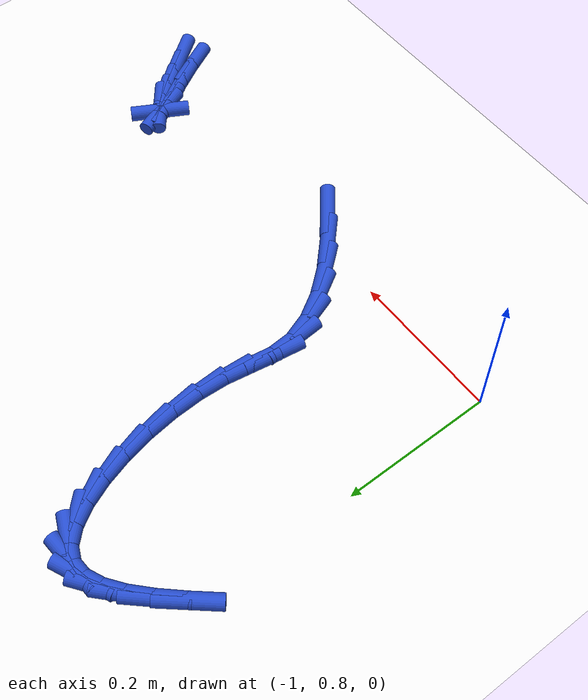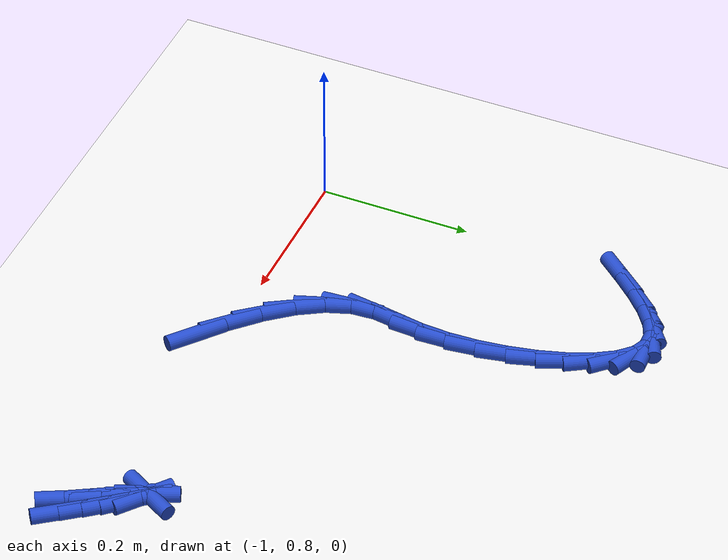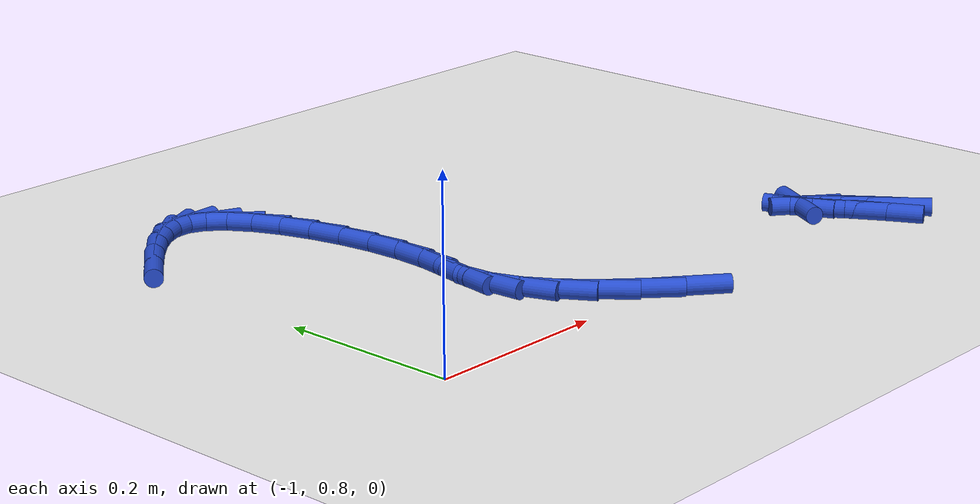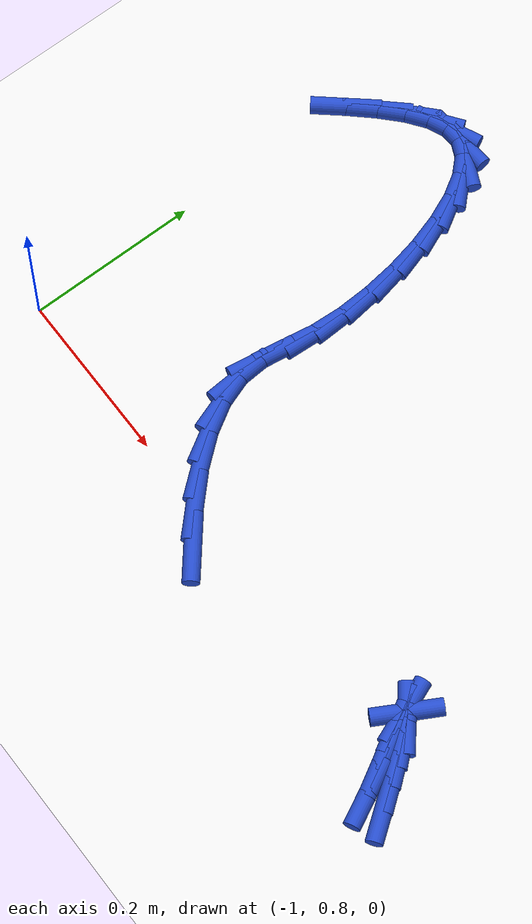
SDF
<sdf version="1.6">
 <world name="default">
  <model name="ground_plane">
   <static>1</static>
   <link name="link">
    <collision name="collision">
     <geometry><plane><normal>0 0 1</normal><size>100 100</size></plane></geometry>
     <surface><friction><ode><mu>100</mu><mu2>50</mu2></ode></friction></surface>
    </collision>
    <visual name="visual">
     <cast_shadows>0</cast_shadows>
     <geometry><plane><normal>0 0 1</normal><size>100 100</size></plane></geometry>
     <material>
      <script><uri>file://media/materials/scripts/gazebo.material</uri><name>Gazebo/WhiteGlow</name></script>
     </material>
    </visual>
   </link>
  </model>
  <model name="line">
   <link name="link_20">
    <pose>-0.326610971854327 0.7570160703169653 0.01 0 1.57 -0.9341128309318267</pose>
    <collision name="collision">
     <geometry><cylinder><radius>0.01</radius><length>0.08</length></cylinder></geometry>
    </collision>
    <visual name="visual">
     <material>
      <script><name>Gazebo/Blue</name><uri>file://media/materials/scripts/gazebo.material</uri></script>
     </material>
     <geometry><cylinder><radius>0.01</radius><length>0.08</length></cylinder></geometry>
    </visual>
   </link>
   <link name="link_21">
    <pose>-0.3464875593101196 0.7838980650699371 0.01 0 1.57 -0.914065761521262</pose>
    <collision name="collision">
     <geometry><cylinder><radius>0.01</radius><length>0.08</length></cylinder></geometry>
    </collision>
    <visual name="visual">
     <material>
      <script><name>Gazebo/Blue</name><uri>file://media/materials/scripts/gazebo.material</uri></script>
     </material>
     <geometry><cylinder><radius>0.01</radius><length>0.08</length></cylinder></geometry>
    </visual>
   </link>
   <link name="link_22">
    <pose>-0.3635627509175131 0.8060483409197607 0.01 0 1.57 -0.8849804289008176</pose>
    <collision name="collision">
     <geometry><cylinder><radius>0.01</radius><length>0.08</length></cylinder></geometry>
    </collision>
    <visual name="visual">
     <material>
      <script><name>Gazebo/Blue</name><uri>file://media/materials/scripts/gazebo.material</uri></script>
     </material>
     <geometry><cylinder><radius>0.01</radius><length>0.08</length></cylinder></geometry>
    </visual>
   </link>
   <link name="link_23">
    <pose>-0.37737124138061656 0.8229224103118391 0.01 0 1.57 -0.8315980081431773</pose>
    <collision name="collision">
     <geometry><cylinder><radius>0.01</radius><length>0.08</length></cylinder></geometry>
    </collision>
    <visual name="visual">
     <material>
      <script><name>Gazebo/Blue</name><uri>file://media/materials/scripts/gazebo.material</uri></script>
     </material>
     <geometry><cylinder><radius>0.01</radius><length>0.08</length></cylinder></geometry>
    </visual>
   </link>
   <link name="link_24">
    <pose>-0.38744772540353967 0.8339757856915754 0.01 0 1.57 -0.6731683115903806</pose>
    <collision name="collision">
     <geometry><cylinder><radius>0.01</radius><length>0.08</length></cylinder></geometry>
    </collision>
    <visual name="visual">
     <material>
      <script><name>Gazebo/Blue</name><uri>file://media/materials/scripts/gazebo.material</uri></script>
     </material>
     <geometry><cylinder><radius>0.01</radius><length>0.08</length></cylinder></geometry>
    </visual>
   </link>
   <link name="link_25">
    <pose>-0.39332689769039164 0.838663979504373 0.01 0 1.57 1.0697714906747218</pose>
    <collision name="collision">
     <geometry><cylinder><radius>0.01</radius><length>0.08</length></cylinder></geometry>
    </collision>
    <visual name="visual">
     <material>
      <script><name>Gazebo/Blue</name><uri>file://media/materials/scripts/gazebo.material</uri></script>
     </material>
     <geometry><cylinder><radius>0.01</radius><length>0.08</length></cylinder></geometry>
    </visual>
   </link>
   <link name="link_26">
    <pose>-0.39454345294528204 0.8364425041956347 0.01 0 1.57 -1.186632170181604</pose>
    <collision name="collision">
     <geometry><cylinder><radius>0.01</radius><length>0.08</length></cylinder></geometry>
    </collision>
    <visual name="visual">
     <material>
      <script><name>Gazebo/Blue</name><uri>file://media/materials/scripts/gazebo.material</uri></script>
     </material>
     <geometry><cylinder><radius>0.01</radius><length>0.08</length></cylinder></geometry>
    </visual>
   </link>
   <link name="link_27">
    <pose>-0.39063208587232 0.8267668722107641 0.01 0 1.57 -1.0773956384388206</pose>
    <collision name="collision">
     <geometry><cylinder><radius>0.01</radius><length>0.08</length></cylinder></geometry>
    </collision>
    <visual name="visual">
     <material>
      <script><name>Gazebo/Blue</name><uri>file://media/materials/scripts/gazebo.material</uri></script>
     </material>
     <geometry><cylinder><radius>0.01</radius><length>0.08</length></cylinder></geometry>
    </visual>
   </link>
   <link name="link_28">
    <pose>-0.38112749117561506 0.809092595995164 0.01 0 1.57 -1.042465320660573</pose>
    <collision name="collision">
     <geometry><cylinder><radius>0.01</radius><length>0.08</length></cylinder></geometry>
    </collision>
    <visual name="visual">
     <material>
      <script><name>Gazebo/Blue</name><uri>file://media/materials/scripts/gazebo.material</uri></script>
     </material>
     <geometry><cylinder><radius>0.01</radius><length>0.08</length></cylinder></geometry>
    </visual>
   </link>
   <link name="link_29">
    <pose>-0.3661862423763073 0.7834941184664659 0.01 0 1.57 -1.053773762595295</pose>
    <collision name="collision">
     <geometry><cylinder><radius>0.01</radius><length>0.08</length></cylinder></geometry>
    </collision>
    <visual name="visual">
     <material>
      <script><name>Gazebo/Blue</name><uri>file://media/materials/scripts/gazebo.material</uri></script>
     </material>
     <geometry><cylinder><radius>0.01</radius><length>0.08</length></cylinder></geometry>
    </visual>
   </link>
   <link name="link_30">
    <pose>-0.34873435090351856 0.7528021904679787 0.01 0 1.57 -1.1028815049736527</pose>
    <collision name="collision">
     <geometry><cylinder><radius>0.01</radius><length>0.08</length></cylinder></geometry>
    </collision>
    <visual name="visual">
     <material>
      <script><name>Gazebo/Blue</name><uri>file://media/materials/scripts/gazebo.material</uri></script>
     </material>
     <geometry><cylinder><radius>0.01</radius><length>0.08</length></cylinder></geometry>
    </visual>
   </link>
   <link name="link_44">
    <pose>-0.674603208683823 0.7681567470777132 0.01 0 1.57 -0.6879440933231683</pose>
    <collision name="collision">
     <geometry><cylinder><radius>0.01</radius><length>0.08</length></cylinder></geometry>
    </collision>
    <visual name="visual">
     <material>
      <script><name>Gazebo/Blue</name><uri>file://media/materials/scripts/gazebo.material</uri></script>
     </material>
     <geometry><cylinder><radius>0.01</radius><length>0.08</length></cylinder></geometry>
    </visual>
   </link>
   <link name="link_45">
    <pose>-0.7112011916011425 0.7982361024724087 0.01 0 1.57 -0.7740104056761873</pose>
    <collision name="collision">
     <geometry><cylinder><radius>0.01</radius><length>0.08</length></cylinder></geometry>
    </collision>
    <visual name="visual">
     <material>
      <script><name>Gazebo/Blue</name><uri>file://media/materials/scripts/gazebo.material</uri></script>
     </material>
     <geometry><cylinder><radius>0.01</radius><length>0.08</length></cylinder></geometry>
    </visual>
   </link>
   <link name="link_46">
    <pose>-0.7432964437118977 0.8296085683435082 0.01 0 1.57 -0.8836534661181015</pose>
    <collision name="collision">
     <geometry><cylinder><radius>0.01</radius><length>0.08</length></cylinder></geometry>
    </collision>
    <visual name="visual">
     <material>
      <script><name>Gazebo/Blue</name><uri>file://media/materials/scripts/gazebo.material</uri></script>
     </material>
     <geometry><cylinder><radius>0.01</radius><length>0.08</length></cylinder></geometry>
    </visual>
   </link>
   <link name="link_47">
    <pose>-0.7696884630965315 0.8617726186434418 0.01 0 1.57 -1.0300184895804152</pose>
    <collision name="collision">
     <geometry><cylinder><radius>0.01</radius><length>0.08</length></cylinder></geometry>
    </collision>
    <visual name="visual">
     <material>
      <script><name>Gazebo/Blue</name><uri>file://media/materials/scripts/gazebo.material</uri></script>
     </material>
     <geometry><cylinder><radius>0.01</radius><length>0.08</length></cylinder></geometry>
    </visual>
   </link>
   <link name="link_48">
    <pose>-0.789176747835486 0.8942267273246394 0.01 0 1.57 -1.2313853323790753</pose>
    <collision name="collision">
     <geometry><cylinder><radius>0.01</radius><length>0.08</length></cylinder></geometry>
    </collision>
    <visual name="visual">
     <material>
      <script><name>Gazebo/Blue</name><uri>file://media/materials/scripts/gazebo.material</uri></script>
     </material>
     <geometry><cylinder><radius>0.01</radius><length>0.08</length></cylinder></geometry>
    </visual>
   </link>
   <link name="link_49">
    <pose>-0.8005607960092038 0.9264693683395312 0.01 0 1.57 -1.5021331663104622</pose>
    <collision name="collision">
     <geometry><cylinder><radius>0.01</radius><length>0.08</length></cylinder></geometry>
    </collision>
    <visual name="visual">
     <material>
      <script><name>Gazebo/Blue</name><uri>file://media/materials/scripts/gazebo.material</uri></script>
     </material>
     <geometry><cylinder><radius>0.01</radius><length>0.08</length></cylinder></geometry>
    </visual>
   </link>
   <link name="link_50">
    <pose>-0.8027313823046557 0.9580317671190492 0.01 0 1.57 1.4180306053113454</pose>
    <collision name="collision">
     <geometry><cylinder><radius>0.01</radius><length>0.08</length></cylinder></geometry>
    </collision>
    <visual name="visual">
     <material>
      <script><name>Gazebo/Blue</name><uri>file://media/materials/scripts/gazebo.material</uri></script>
     </material>
     <geometry><cylinder><radius>0.01</radius><length>0.08</length></cylinder></geometry>
    </visual>
   </link>
   <link name="link_51">
    <pose>-0.797867138492566 0.9896248838004381 0.01 0 1.57 1.4061586394690828</pose>
    <collision name="collision">
     <geometry><cylinder><radius>0.01</radius><length>0.08</length></cylinder></geometry>
    </collision>
    <visual name="visual">
     <material>
      <script><name>Gazebo/Blue</name><uri>file://media/materials/scripts/gazebo.material</uri></script>
     </material>
     <geometry><cylinder><radius>0.01</radius><length>0.08</length></cylinder></geometry>
    </visual>
   </link>
   <link name="link_52">
    <pose>-0.792251040381194 1.0234279805328215 0.01 0 1.57 1.5149853746097552</pose>
    <collision name="collision">
     <geometry><cylinder><radius>0.01</radius><length>0.08</length></cylinder></geometry>
    </collision>
    <visual name="visual">
     <material>
      <script><name>Gazebo/Blue</name><uri>file://media/materials/scripts/gazebo.material</uri></script>
     </material>
     <geometry><cylinder><radius>0.01</radius><length>0.08</length></cylinder></geometry>
    </visual>
   </link>
   <link name="link_53">
    <pose>-0.7901823507023541 1.060455503934877 0.01 0 1.57 -1.5293515457072289</pose>
    <collision name="collision">
     <geometry><cylinder><radius>0.01</radius><length>0.08</length></cylinder></geometry>
    </collision>
    <visual name="visual">
     <material>
      <script><name>Gazebo/Blue</name><uri>file://media/materials/scripts/gazebo.material</uri></script>
     </material>
     <geometry><cylinder><radius>0.01</radius><length>0.08</length></cylinder></geometry>
    </visual>
   </link>
   <link name="link_54">
    <pose>-0.7917968211206052 1.0993879314758261 0.01 0 1.57 -1.4446012060952833</pose>
    <collision name="collision">
     <geometry><cylinder><radius>0.01</radius><length>0.08</length></cylinder></geometry>
    </collision>
    <visual name="visual">
     <material>
      <script><name>Gazebo/Blue</name><uri>file://media/materials/scripts/gazebo.material</uri></script>
     </material>
     <geometry><cylinder><radius>0.01</radius><length>0.08</length></cylinder></geometry>
    </visual>
   </link>
   <link name="link_55">
    <pose>-0.7967782773159612 1.1386524012464836 0.01 0 1.57 -1.36261298165159</pose>
    <collision name="collision">
     <geometry><cylinder><radius>0.01</radius><length>0.08</length></cylinder></geometry>
    </collision>
    <visual name="visual">
     <material>
      <script><name>Gazebo/Blue</name><uri>file://media/materials/scripts/gazebo.material</uri></script>
     </material>
     <geometry><cylinder><radius>0.01</radius><length>0.08</length></cylinder></geometry>
    </visual>
   </link>
   <link name="link_56">
    <pose>-0.8048105449684372 1.1766760513376644 0.01 0 1.57 -1.2740348467215763</pose>
    <collision name="collision">
     <geometry><cylinder><radius>0.01</radius><length>0.08</length></cylinder></geometry>
    </collision>
    <visual name="visual">
     <material>
      <script><name>Gazebo/Blue</name><uri>file://media/materials/scripts/gazebo.material</uri></script>
     </material>
     <geometry><cylinder><radius>0.01</radius><length>0.08</length></cylinder></geometry>
    </visual>
   </link>
   <link name="link_57">
    <pose>-0.8155774497580461 1.2118860198401835 0.01 0 1.57 -1.1665809531986697</pose>
    <collision name="collision">
     <geometry><cylinder><radius>0.01</radius><length>0.08</length></cylinder></geometry>
    </collision>
    <visual name="visual">
     <material>
      <script><name>Gazebo/Blue</name><uri>file://media/materials/scripts/gazebo.material</uri></script>
     </material>
     <geometry><cylinder><radius>0.01</radius><length>0.08</length></cylinder></geometry>
    </visual>
   </link>
   <link name="link_58">
    <pose>-0.8287628173648032 1.2427094448448561 0.01 0 1.57 -1.0195288065338302</pose>
    <collision name="collision">
     <geometry><cylinder><radius>0.01</radius><length>0.08</length></cylinder></geometry>
    </collision>
    <visual name="visual">
     <material>
      <script><name>Gazebo/Blue</name><uri>file://media/materials/scripts/gazebo.material</uri></script>
     </material>
     <geometry><cylinder><radius>0.01</radius><length>0.08</length></cylinder></geometry>
    </visual>
   </link>
   <link name="link_59">
    <pose>-0.844050473468722 1.267573464442497 0.01 0 1.57 -0.7928962958582678</pose>
    <collision name="collision">
     <geometry><cylinder><radius>0.01</radius><length>0.08</length></cylinder></geometry>
    </collision>
    <visual name="visual">
     <material>
      <script><name>Gazebo/Blue</name><uri>file://media/materials/scripts/gazebo.material</uri></script>
     </material>
     <geometry><cylinder><radius>0.01</radius><length>0.08</length></cylinder></geometry>
    </visual>
   </link>
   <link name="link_60">
    <pose>-0.8611242437498168 1.2849052167239212 0.01 0 1.57 -0.4187631222393703</pose>
    <collision name="collision">
     <geometry><cylinder><radius>0.01</radius><length>0.08</length></cylinder></geometry>
    </collision>
    <visual name="visual">
     <material>
      <script><name>Gazebo/Blue</name><uri>file://media/materials/scripts/gazebo.material</uri></script>
     </material>
     <geometry><cylinder><radius>0.01</radius><length>0.08</length></cylinder></geometry>
    </visual>
   </link>
   <link name="link_61">
    <pose>-0.8796703761342545 1.2931599114465782 0.01 0 1.57 0.060290091999281405</pose>
    <collision name="collision">
     <geometry><cylinder><radius>0.01</radius><length>0.08</length></cylinder></geometry>
    </collision>
    <visual name="visual">
     <material>
      <script><name>Gazebo/Blue</name><uri>file://media/materials/scripts/gazebo.material</uri></script>
     </material>
     <geometry><cylinder><radius>0.01</radius><length>0.08</length></cylinder></geometry>
    </visual>
   </link>
   <link name="link_62">
    <pose>-0.8994762142151558 1.291964366735504 0.01 0 1.57 0.42301511139550524</pose>
    <collision name="collision">
     <geometry><cylinder><radius>0.01</radius><length>0.08</length></cylinder></geometry>
    </collision>
    <visual name="visual">
     <material>
      <script><name>Gazebo/Blue</name><uri>file://media/materials/scripts/gazebo.material</uri></script>
     </material>
     <geometry><cylinder><radius>0.01</radius><length>0.08</length></cylinder></geometry>
    </visual>
   </link>
   <link name="link_63">
    <pose>-0.9204645849325938 1.282515531540735 0.01 0 1.57 0.6382057872704682</pose>
    <collision name="collision">
     <geometry><cylinder><radius>0.01</radius><length>0.08</length></cylinder></geometry>
    </collision>
    <visual name="visual">
     <material>
      <script><name>Gazebo/Blue</name><uri>file://media/materials/scripts/gazebo.material</uri></script>
     </material>
     <geometry><cylinder><radius>0.01</radius><length>0.08</length></cylinder></geometry>
    </visual>
   </link>
   <link name="link_64">
    <pose>-0.9425678003503201 1.2661202789129573 0.01 0 1.57 0.7607142104542608</pose>
    <collision name="collision">
     <geometry><cylinder><radius>0.01</radius><length>0.08</length></cylinder></geometry>
    </collision>
    <visual name="visual">
     <material>
      <script><name>Gazebo/Blue</name><uri>file://media/materials/scripts/gazebo.material</uri></script>
     </material>
     <geometry><cylinder><radius>0.01</radius><length>0.08</length></cylinder></geometry>
    </visual>
   </link>
   <link name="link_65">
    <pose>-0.9657181725320864 1.2440854819028568 0.01 0 1.57 0.8296810079567392</pose>
    <collision name="collision">
     <geometry><cylinder><radius>0.01</radius><length>0.08</length></cylinder></geometry>
    </collision>
    <visual name="visual">
     <material>
      <script><name>Gazebo/Blue</name><uri>file://media/materials/scripts/gazebo.material</uri></script>
     </material>
     <geometry><cylinder><radius>0.01</radius><length>0.08</length></cylinder></geometry>
    </visual>
   </link>
   <link name="link_66">
    <pose>-0.9898480135416446 1.2177180135611205 0.01 0 1.57 0.8651707159796929</pose>
    <collision name="collision">
     <geometry><cylinder><radius>0.01</radius><length>0.08</length></cylinder></geometry>
    </collision>
    <visual name="visual">
     <material>
      <script><name>Gazebo/Blue</name><uri>file://media/materials/scripts/gazebo.material</uri></script>
     </material>
     <geometry><cylinder><radius>0.01</radius><length>0.08</length></cylinder></geometry>
    </visual>
   </link>
  </model>
 </world>
</sdf>
